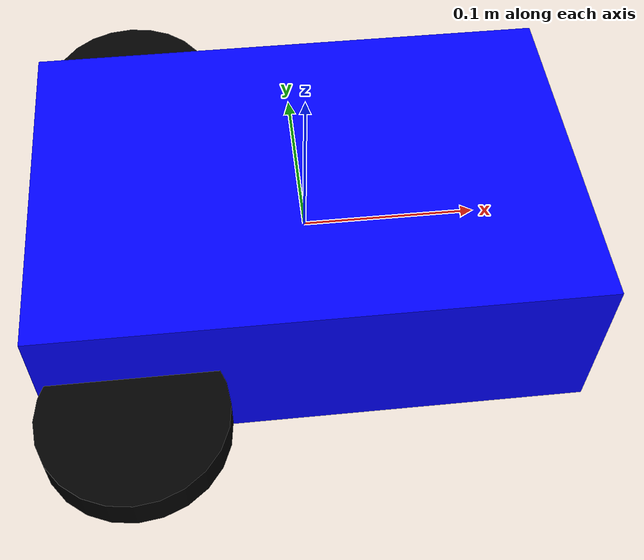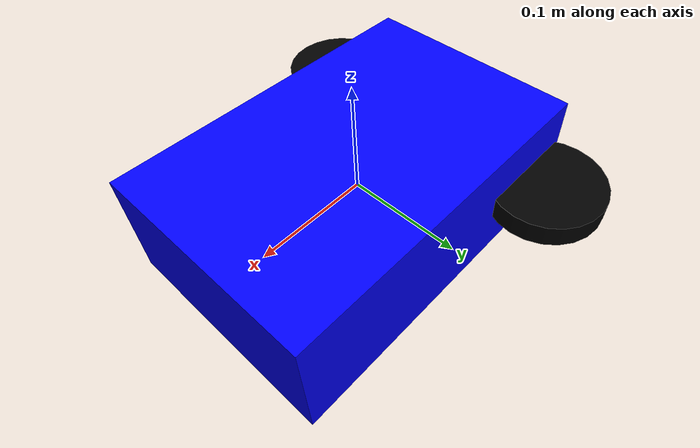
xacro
<?xml version="1.0"?>
<robot xmlns:xacro="http://www.ros.org/wiki/xacro" name="amr">

  <link name="base_link">
    <visual>
      <geometry>
        <box size="0.3 0.2 0.1"/>
      </geometry>
      <material name="blue">
        <color rgba="0 0 1 1"/>
      </material>
    </visual>
  </link>

  <link name="left_wheel">
    <visual>
      <geometry>
        <cylinder radius="0.05" length="0.02"/>
      </geometry>
      <material name="black">
        <color rgba="0 0 0 1"/>
      </material>
    </visual>
  </link>

  <joint name="left_wheel_joint" type="continuous">
    <parent link="base_link"/>
    <child link="left_wheel"/>
    <origin xyz="-0.1 0.12 0" rpy="0 0 0"/>
    <axis xyz="0 1 0"/>
  </joint>

  <link name="right_wheel">
    <visual>
      <geometry>
        <cylinder radius="0.05" length="0.02"/>
      </geometry>
      <material name="black"/>
    </visual>
  </link>

  <joint name="right_wheel_joint" type="continuous">
    <parent link="base_link"/>
    <child link="right_wheel"/>
    <origin xyz="-0.1 -0.12 0" rpy="0 0 0"/>
    <axis xyz="0 1 0"/>
  </joint>

</robot>
